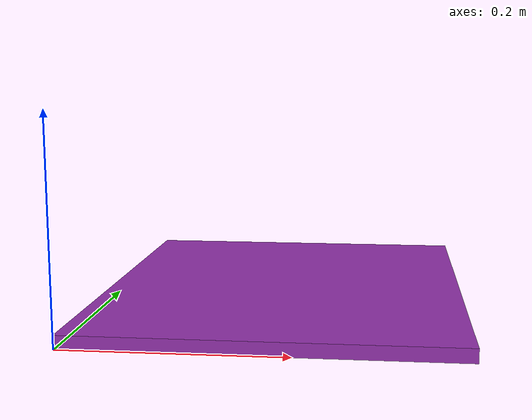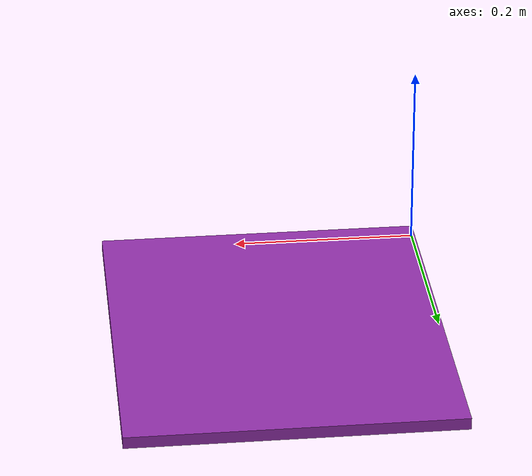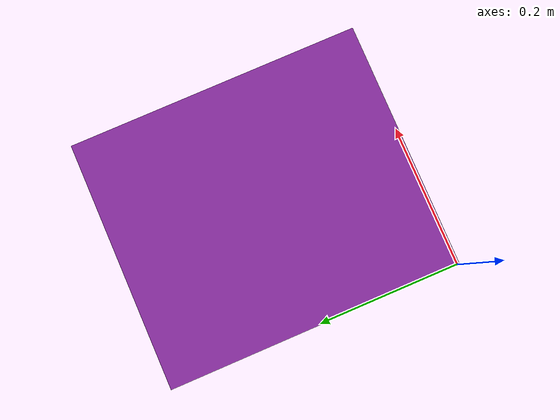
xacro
<?xml version='1.0'?>
<robot xmlns:xacro="http://www.ros.org/wiki/xacro" name="base_plate">
  <xacro:property name="body_l" value="0.34925"/>
  <xacro:property name="body_w" value="0.41275"/>
  <xacro:property name="body_h" value="0.0127"/>

  <link name="base_plate">
    <inertial>
      <origin xyz="${body_l/2} ${body_w/2} ${body_h/2}" />
      <mass value="0.36" />
      <inertia  ixx="0.5" ixy="0.0"  ixz="0.0"  iyy="0.5"  iyz="0.0"  izz="0.5" />
    </inertial>
    <visual>
      <origin xyz="${body_l/2} ${body_w/2} ${body_h/2}" />
      <geometry>
        <box size="${body_l} ${body_w} ${body_h}" />
      </geometry>
    </visual>
    <collision>
      <origin xyz="${body_l/2} ${body_w/2} ${body_h/2}" />
      <geometry>
        <box size="${body_l} ${body_w} ${body_h}" />
      </geometry>
    </collision>
  </link>

  <gazebo reference="base_plate">
     <material>Gazebo/Purple</material>
     <mu1>1000</mu1>
     <mu2>1000</mu2>
  </gazebo>
</robot>
